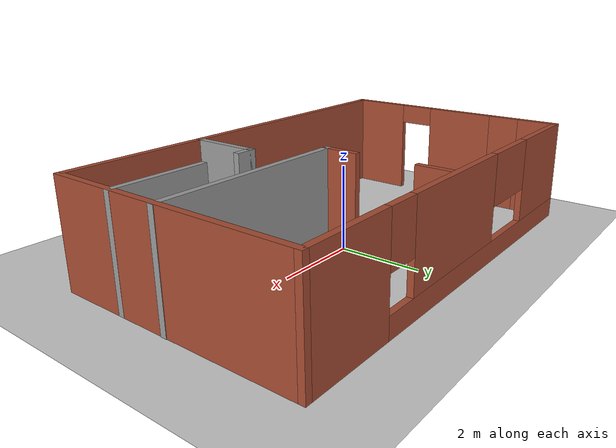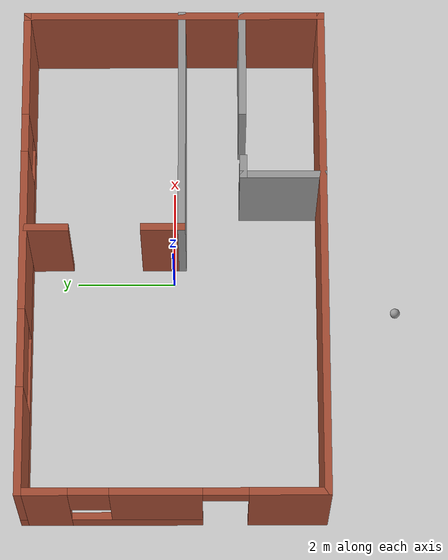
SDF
<sdf version="1.6">
 <world name="default">
  <plugin name="print_str" filename="libprint_str.so"/>
  <light name="sun" type="directional">
   <pose>0 0 10 0 -0 0</pose>
   <diffuse>0.8 0.8 0.8 1</diffuse>
   <specular>0.2 0.2 0.2 1</specular>
   <attenuation>
    <range>1000</range>
    <constant>0.9</constant>
    <linear>0.01</linear>
    <quadratic>0.001</quadratic>
   </attenuation>
   <direction>-0.5 0.1 -0.9</direction>
  </light>
  <model name="ground_plane">
   <static>1</static>
   <link name="link">
    <collision name="collision">
     <geometry><plane><normal>0 0 1</normal><size>100 100</size></plane></geometry>
     <surface><friction><ode><mu>100</mu><mu2>50</mu2></ode></friction></surface>
    </collision>
    <visual name="visual">
     <cast_shadows>0</cast_shadows>
     <geometry><plane><normal>0 0 1</normal><size>100 100</size></plane></geometry>
     <material>
      <script><uri>file://media/materials/scripts/gazebo.material</uri><name>Gazebo/Grey</name></script>
     </material>
    </visual>
   </link>
  </model>
  <gravity>0 0 -9.8</gravity>
  <magnetic_field>6e-06 2.3e-05 -4.2e-05</magnetic_field>
  <atmosphere type="adiabatic"/>
  <physics name="default_physics" default="0" type="ode">
   <max_step_size>0.001</max_step_size>
   <real_time_factor>1</real_time_factor>
   <real_time_update_rate>1000</real_time_update_rate>
  </physics>
  <scene><ambient>0.4 0.4 0.4 1</ambient><background>0.7 0.7 0.7 1</background><shadows>1</shadows></scene>
  <spherical_coordinates>
   <surface_model>EARTH_WGS84</surface_model>
   <latitude_deg>0</latitude_deg>
   <longitude_deg>0</longitude_deg>
   <elevation>0</elevation>
   <heading_deg>0</heading_deg>
  </spherical_coordinates>
  <model name="building">
   <pose>-0.014264 -0.00519 0 0 -0 0</pose>
   <link name="Wall_1">
    <collision name="Wall_1_Collision">
     <geometry><box><size>10.15 0.15 2.5</size></box></geometry>
     <pose>0 0 1.25 0 -0 0</pose>
    </collision>
    <visual name="Wall_1_Visual">
     <pose>0 0 1.25 0 -0 0</pose>
     <geometry><box><size>10.15 0.15 2.5</size></box></geometry>
     <material>
      <script><uri>file://media/materials/scripts/gazebo.material</uri><name>Gazebo/Bricks</name></script>
      <ambient>0.760784 0.662745 0.627451 1</ambient>
     </material>
     <meta><layer>0</layer></meta>
    </visual>
    <pose>-0.006393 -3 0 0 -0 0</pose>
   </link>
   <link name="Wall_11">
    <collision name="Wall_11_Collision">
     <geometry><box><size>2.25 0.15 2.5</size></box></geometry>
     <pose>0 0 1.25 0 -0 0</pose>
    </collision>
    <visual name="Wall_11_Visual">
     <pose>0 0 1.25 0 -0 0</pose>
     <geometry><box><size>2.25 0.15 2.5</size></box></geometry>
     <material>
      <script><uri>file://media/materials/scripts/gazebo.material</uri><name>Gazebo/Grey</name></script>
      <ambient>1 1 1 1</ambient>
     </material>
     <meta><layer>0</layer></meta>
    </visual>
    <pose>3.94466 -1.38999 0 0 -0 3.14159</pose>
   </link>
   <link name="Wall_14">
    <collision name="Wall_14_Collision">
     <geometry><box><size>4.75 0.15 2.5</size></box></geometry>
     <pose>0 0 1.25 0 -0 0</pose>
    </collision>
    <visual name="Wall_14_Visual">
     <pose>0 0 1.25 0 -0 0</pose>
     <geometry><box><size>4.75 0.15 2.5</size></box></geometry>
     <material>
      <script><uri>file://media/materials/scripts/gazebo.material</uri><name>Gazebo/Grey</name></script>
      <ambient>1 1 1 1</ambient>
     </material>
     <meta><layer>0</layer></meta>
    </visual>
    <pose>2.70639 -0.159246 0 0 -0 3.14149</pose>
   </link>
   <link name="Wall_16">
    <collision name="Wall_16_Collision">
     <geometry><box><size>0.9 0.15 2.5</size></box></geometry>
     <pose>0 0 1.25 0 -0 0</pose>
    </collision>
    <visual name="Wall_16_Visual">
     <pose>0 0 1.25 0 -0 0</pose>
     <geometry><box><size>0.9 0.15 2.5</size></box></geometry>
     <material>
      <script><uri>file://media/materials/scripts/gazebo.material</uri><name>Gazebo/Bricks</name></script>
      <ambient>1 1 1 1</ambient>
     </material>
     <meta><layer>0</layer></meta>
    </visual>
    <pose>0.406607 0.216 0 0 -0 1.5708</pose>
   </link>
   <link name="Wall_2">
    <collision name="Wall_2_Collision">
     <geometry><box><size>6.15 0.15 2.5</size></box></geometry>
     <pose>0 0 1.25 0 -0 0</pose>
    </collision>
    <visual name="Wall_2_Visual">
     <pose>0 0 1.25 0 -0 0</pose>
     <geometry><box><size>6.15 0.15 2.5</size></box></geometry>
     <material>
      <script><uri>file://media/materials/scripts/gazebo.material</uri><name>Gazebo/Bricks</name></script>
      <ambient>1 1 1 1</ambient>
     </material>
     <meta><layer>0</layer></meta>
    </visual>
    <pose>4.99361 0 0 0 -0 1.5708</pose>
   </link>
   <link name="Wall_21">
    <collision name="Wall_21_Collision">
     <geometry><box><size>0.9 0.15 2.5</size></box></geometry>
     <pose>0 0 1.25 0 -0 0</pose>
    </collision>
    <visual name="Wall_21_Visual">
     <pose>0 0 1.25 0 -0 0</pose>
     <geometry><box><size>0.9 0.15 2.5</size></box></geometry>
     <material>
      <script><uri>file://media/materials/scripts/gazebo.material</uri><name>Gazebo/Bricks</name></script>
      <ambient>1 1 1 1</ambient>
     </material>
     <meta><layer>0</layer></meta>
    </visual>
    <pose>0.406607 2.548 0 0 0 -1.5708</pose>
   </link>
   <link name="Wall_3">
    <pose>-0.006393 3 0 0 -0 3.14159</pose>
    <visual name="Wall_3_Visual_0">
     <pose>-3.95578 0 1.25 0 -0 0</pose>
     <geometry><box><size>2.23845 0.15 2.5</size></box></geometry>
     <material>
      <script><uri>file://media/materials/scripts/gazebo.material</uri><name>Gazebo/Bricks</name></script>
      <ambient>0.760784 0.662745 0.627451 1</ambient>
     </material>
     <meta><layer>0</layer></meta>
    </visual>
    <collision name="Wall_3_Collision_0">
     <geometry><box><size>2.23845 0.15 2.5</size></box></geometry>
     <pose>-3.95578 0 1.25 0 -0 0</pose>
    </collision>
    <visual name="Wall_3_Visual_1">
     <pose>1.11922 0 0.25 0 -0 0</pose>
     <geometry><box><size>7.91155 0.15 0.5</size></box></geometry>
     <material>
      <script><uri>file://media/materials/scripts/gazebo.material</uri><name>Gazebo/Bricks</name></script>
      <ambient>0.760784 0.662745 0.627451 1</ambient>
     </material>
     <meta><layer>0</layer></meta>
    </visual>
    <collision name="Wall_3_Collision_1">
     <geometry><box><size>7.91155 0.15 0.5</size></box></geometry>
     <pose>1.11922 0 0.25 0 -0 0</pose>
    </collision>
    <visual name="Wall_3_Visual_2">
     <pose>-0.371055 0 1.5 0 -0 0</pose>
     <geometry><box><size>3.331 0.15 2</size></box></geometry>
     <material>
      <script><uri>file://media/materials/scripts/gazebo.material</uri><name>Gazebo/Bricks</name></script>
      <ambient>0.760784 0.662745 0.627451 1</ambient>
     </material>
     <meta><layer>0</layer></meta>
    </visual>
    <collision name="Wall_3_Collision_2">
     <geometry><box><size>3.331 0.15 2</size></box></geometry>
     <pose>-0.371055 0 1.5 0 -0 0</pose>
    </collision>
    <visual name="Wall_3_Visual_3">
     <pose>3.98472 0 1.5 0 -0 0</pose>
     <geometry><box><size>2.18056 0.15 2</size></box></geometry>
     <material>
      <script><uri>file://media/materials/scripts/gazebo.material</uri><name>Gazebo/Bricks</name></script>
      <ambient>0.760784 0.662745 0.627451 1</ambient>
     </material>
     <meta><layer>0</layer></meta>
    </visual>
    <collision name="Wall_3_Collision_3">
     <geometry><box><size>2.18056 0.15 2</size></box></geometry>
     <pose>3.98472 0 1.5 0 -0 0</pose>
    </collision>
    <visual name="Wall_3_Visual_4">
     <pose>-2.43655 0 1.9 0 -0 0</pose>
     <geometry><box><size>0.8 0.15 1.2</size></box></geometry>
     <material>
      <script><uri>file://media/materials/scripts/gazebo.material</uri><name>Gazebo/Bricks</name></script>
      <ambient>0.760784 0.662745 0.627451 1</ambient>
     </material>
     <meta><layer>0</layer></meta>
    </visual>
    <collision name="Wall_3_Collision_4">
     <geometry><box><size>0.8 0.15 1.2</size></box></geometry>
     <pose>-2.43655 0 1.9 0 -0 0</pose>
    </collision>
    <visual name="Wall_3_Visual_5">
     <pose>2.09444 0 1.9 0 -0 0</pose>
     <geometry><box><size>1.6 0.15 1.2</size></box></geometry>
     <material>
      <script><uri>file://media/materials/scripts/gazebo.material</uri><name>Gazebo/Bricks</name></script>
      <ambient>0.760784 0.662745 0.627451 1</ambient>
     </material>
     <meta><layer>0</layer></meta>
    </visual>
    <collision name="Wall_3_Collision_5">
     <geometry><box><size>1.6 0.15 1.2</size></box></geometry>
     <pose>2.09444 0 1.9 0 -0 0</pose>
    </collision>
   </link>
   <link name="Wall_4">
    <pose>-5.00639 0 0 0 0 -1.5708</pose>
    <visual name="Wall_4_Visual_0">
     <pose>-2.55475 0 1.25 0 -0 0</pose>
     <geometry><box><size>1.04049 0.15 2.5</size></box></geometry>
     <material>
      <script><uri>file://media/materials/scripts/gazebo.material</uri><name>Gazebo/Bricks</name></script>
      <ambient>1 1 1 1</ambient>
     </material>
     <meta><layer>0</layer></meta>
    </visual>
    <collision name="Wall_4_Collision_0">
     <geometry><box><size>1.04049 0.15 2.5</size></box></geometry>
     <pose>-2.55475 0 1.25 0 -0 0</pose>
    </collision>
    <visual name="Wall_4_Visual_1">
     <pose>2.2735 0 1.25 0 -0 0</pose>
     <geometry><box><size>1.60301 0.15 2.5</size></box></geometry>
     <material>
      <script><uri>file://media/materials/scripts/gazebo.material</uri><name>Gazebo/Bricks</name></script>
      <ambient>1 1 1 1</ambient>
     </material>
     <meta><layer>0</layer></meta>
    </visual>
    <collision name="Wall_4_Collision_1">
     <geometry><box><size>1.60301 0.15 2.5</size></box></geometry>
     <pose>2.2735 0 1.25 0 -0 0</pose>
    </collision>
    <visual name="Wall_4_Visual_2">
     <pose>-0.731257 0 0.25 0 -0 0</pose>
     <geometry><box><size>2.6065 0.15 0.5</size></box></geometry>
     <material>
      <script><uri>file://media/materials/scripts/gazebo.material</uri><name>Gazebo/Bricks</name></script>
      <ambient>1 1 1 1</ambient>
     </material>
     <meta><layer>0</layer></meta>
    </visual>
    <collision name="Wall_4_Collision_2">
     <geometry><box><size>2.6065 0.15 0.5</size></box></geometry>
     <pose>-0.731257 0 0.25 0 -0 0</pose>
    </collision>
    <visual name="Wall_4_Visual_3">
     <pose>-0.331257 0 1.5 0 -0 0</pose>
     <geometry><box><size>1.8065 0.15 2</size></box></geometry>
     <material>
      <script><uri>file://media/materials/scripts/gazebo.material</uri><name>Gazebo/Bricks</name></script>
      <ambient>1 1 1 1</ambient>
     </material>
     <meta><layer>0</layer></meta>
    </visual>
    <collision name="Wall_4_Collision_3">
     <geometry><box><size>1.8065 0.15 2</size></box></geometry>
     <pose>-0.331257 0 1.5 0 -0 0</pose>
    </collision>
    <visual name="Wall_4_Visual_4">
     <pose>-1.63451 0 1.9 0 -0 0</pose>
     <geometry><box><size>0.8 0.15 1.2</size></box></geometry>
     <material>
      <script><uri>file://media/materials/scripts/gazebo.material</uri><name>Gazebo/Bricks</name></script>
      <ambient>1 1 1 1</ambient>
     </material>
     <meta><layer>0</layer></meta>
    </visual>
    <collision name="Wall_4_Collision_4">
     <geometry><box><size>0.8 0.15 1.2</size></box></geometry>
     <pose>-1.63451 0 1.9 0 -0 0</pose>
    </collision>
    <visual name="Wall_4_Visual_5">
     <pose>1.02199 0 2.25 0 -0 0</pose>
     <geometry><box><size>0.9 0.15 0.5</size></box></geometry>
     <material>
      <script><uri>file://media/materials/scripts/gazebo.material</uri><name>Gazebo/Bricks</name></script>
      <ambient>1 1 1 1</ambient>
     </material>
     <meta><layer>0</layer></meta>
    </visual>
    <collision name="Wall_4_Collision_5">
     <geometry><box><size>0.9 0.15 0.5</size></box></geometry>
     <pose>1.02199 0 2.25 0 -0 0</pose>
    </collision>
   </link>
   <link name="Wall_6">
    <collision name="Wall_6_Collision">
     <geometry><box><size>1.75 0.15 2.5</size></box></geometry>
     <pose>0 0 1.25 0 -0 0</pose>
    </collision>
    <visual name="Wall_6_Visual">
     <pose>0 0 1.25 0 -0 0</pose>
     <geometry><box><size>1.75 0.15 2.5</size></box></geometry>
     <material>
      <script><uri>file://media/materials/scripts/gazebo.material</uri><name>Gazebo/Grey</name></script>
      <ambient>1 1 1 1</ambient>
     </material>
     <meta><layer>0</layer></meta>
    </visual>
    <pose>1.52166 -2.19999 0 0 -0 1.5708</pose>
   </link>
   <link name="Wall_7">
    <collision name="Wall_7_Collision">
     <geometry><box><size>0.5 0.15 2.5</size></box></geometry>
     <pose>0 0 1.25 0 -0 0</pose>
    </collision>
    <visual name="Wall_7_Visual">
     <pose>0 0 1.25 0 -0 0</pose>
     <geometry><box><size>0.5 0.15 2.5</size></box></geometry>
     <material>
      <script><uri>file://media/materials/scripts/gazebo.material</uri><name>Gazebo/Grey</name></script>
      <ambient>1 1 1 1</ambient>
     </material>
     <meta><layer>0</layer></meta>
    </visual>
    <pose>1.69666 -1.39999 0 0 -0 0</pose>
   </link>
   <static>1</static>
  </model>
  <model name="my_ball">
   <link name="link">
    <inertial>
     <mass>1</mass>
     <inertia><ixx>0.1</ixx><ixy>0</ixy><ixz>0</ixz><iyy>0.1</iyy><iyz>0</iyz><izz>0.1</izz></inertia>
    </inertial>
    <visual name="visual">
     <geometry><sphere><radius>0.1</radius></sphere></geometry>
     <material>
      <script><name>Gazebo/Grey</name><uri>file://media/materials/scripts/gazebo.material</uri></script>
      <shader type="pixel"><normal_map>__default__</normal_map></shader>
      <ambient>1 1 1 1</ambient>
      <diffuse>1 1 1 1</diffuse>
      <specular>1 1 1 1</specular>
      <emissive>1 1 1 1</emissive>
     </material>
    </visual>
    <collision name="collision">
     <geometry><sphere><radius>0.1</radius></sphere></geometry>
     <surface>
      <friction>
       <ode><mu>1</mu><mu2>1</mu2><fdir1>0 0 0</fdir1><slip1>0</slip1><slip2>0</slip2></ode>
       <torsional>
        <coefficient>1</coefficient>
        <patch_radius>0</patch_radius>
        <surface_radius>0</surface_radius>
        <use_patch_radius>1</use_patch_radius>
        <ode><slip>0</slip></ode>
       </torsional>
      </friction>
      <bounce><restitution_coefficient>0</restitution_coefficient><threshold>1e+06</threshold></bounce>
      <contact>
       <collide_without_contact>0</collide_without_contact>
       <collide_without_contact_bitmask>1</collide_without_contact_bitmask>
       <collide_bitmask>1</collide_bitmask>
       <ode>
        <soft_cfm>0</soft_cfm>
        <soft_erp>0.2</soft_erp>
        <kp>1e+13</kp>
        <kd>1</kd>
        <max_vel>0.01</max_vel>
        <min_depth>0</min_depth>
       </ode>
       <bullet>
        <split_impulse>1</split_impulse>
        <split_impulse_penetration_threshold>-0.01</split_impulse_penetration_threshold>
        <soft_cfm>0</soft_cfm>
        <soft_erp>0.2</soft_erp>
        <kp>1e+13</kp>
        <kd>1</kd>
       </bullet>
      </contact>
     </surface>
    </collision>
   </link>
   <static>0</static>
   <pose>-0.655059 -4.54452 0.1 0 -0 0</pose>
  </model>
  <plugin filename="libcollision_map_creator.so" name="collision_map_creator"/>
 </world>
</sdf>
